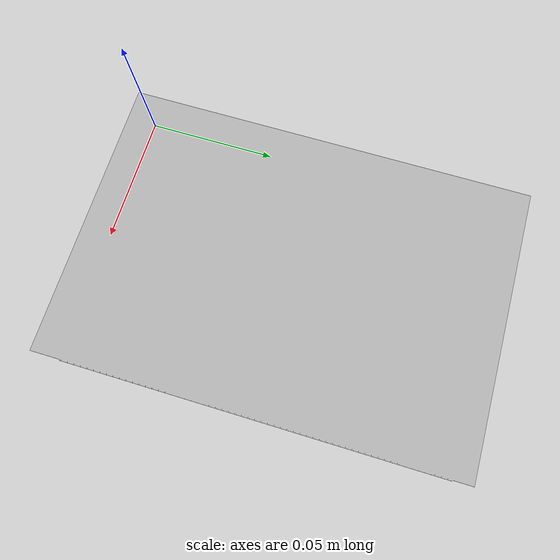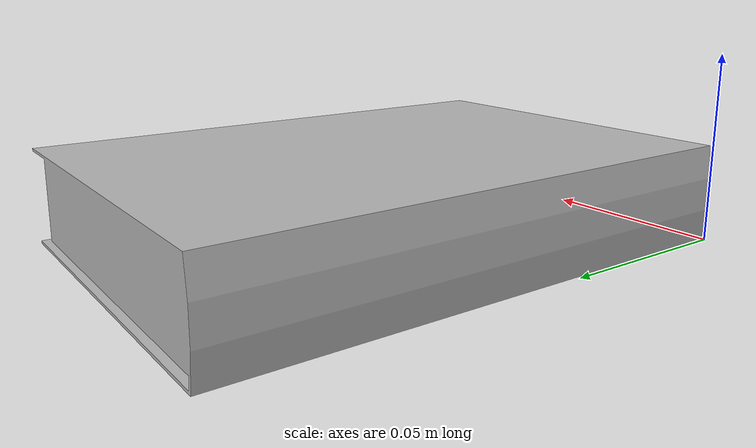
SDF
<?xml version='1.0'?>
<sdf version="1.4">
  <model name="book_green">
    <pose>0 0 0  0 0 0</pose>
    <static>0</static>
    <link name="body">
      <inertial>
          <mass>0.4</mass>
          <inertia>
            <ixx>0.000874</ixx>
            <ixy>0.000000</ixy>
            <ixz>0.000000</ixz>
            <iyy>0.000354</iyy>
            <iyz>0.000000</iyz>
            <izz>0.001187</izz>
          </inertia>
      </inertial>
      <collision name="collision">
        <geometry>
          <mesh>
			  <uri>model://book_green/meshes/book_g.obj</uri>
          </mesh>
        </geometry>
        <surface>
            <friction>
              <ode>
                <mu>30.0</mu>
                <mu2>30.0</mu2>
              </ode>
            </friction>
            <contact>
              <ode>
                <kp>1000000.0</kp>
                <kd>100.0</kd>
                <max_vel>1.0</max_vel>
                <min_depth>0.002</min_depth>
              </ode>
            </contact>
      </surface>
      </collision>
      <visual name="visual">
        <geometry>
          <mesh>
			  <uri>model://book_green/meshes/book_g.obj</uri>
          </mesh>
        </geometry>
      </visual>
      <velocity_decay>
        <linear>0.000000</linear>
        <angular>0.000000</angular>
      </velocity_decay>
      <self_collide>0</self_collide>
      <kinematic>0</kinematic>
      <gravity>1</gravity>
    </link>
  </model>
</sdf>
